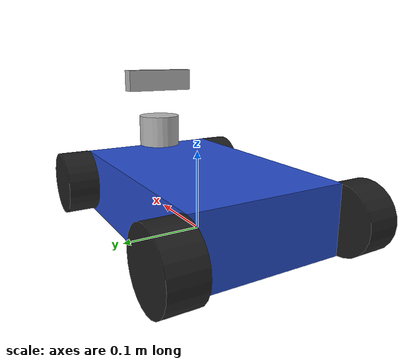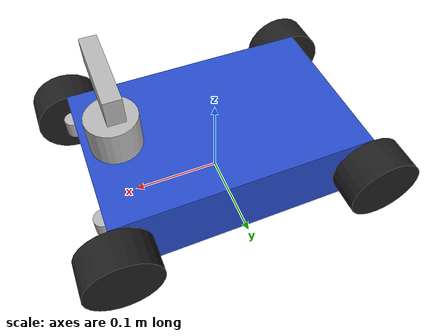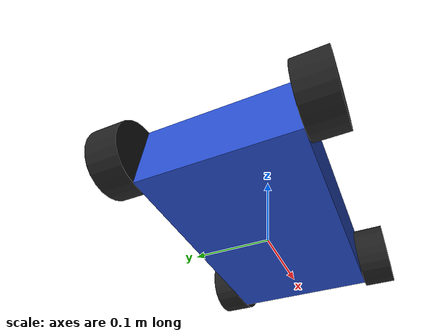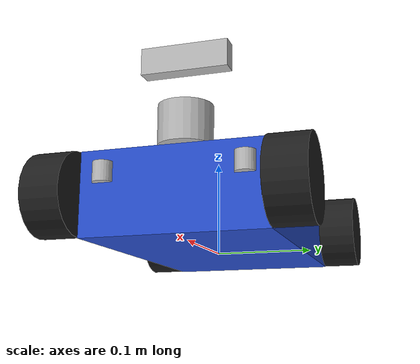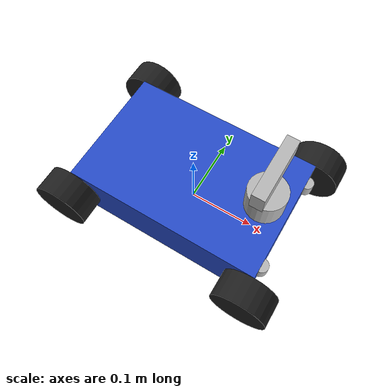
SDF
<sdf version='1.7'>
  <model name='arjuna_robot'>
    <link name='base_footprint'>
      <inertial>
        <pose>0.005202 0.000617 0.045561 0 -0 0</pose>
        <mass>5.27</mass>
        <inertia>
          <ixx>0.10289</ixx>
          <ixy>-0.000145593</ixy>
          <ixz>-0.00225699</ixz>
          <iyy>0.105411</iyy>
          <iyz>1.31973e-05</iyz>
          <izz>0.103347</izz>
        </inertia>
      </inertial>
      <collision name='base_footprint_fixed_joint_lump__base_link_collision'>
        <pose>0 0 0.0465 0 -0 0</pose>
        <geometry>
          <box>
            <size>0.29161 0.187 0.084</size>
          </box>
        </geometry>
        <surface>
          <contact>
            <ode/>
          </contact>
          <friction>
            <ode/>
          </friction>
        </surface>
      </collision>
      <collision name='base_footprint_fixed_joint_lump__camera_collision_1'>
        <pose>0.11 0 0.1815 0 -0 0</pose>
        <geometry>
          <box>
            <size>0.0175 0.091 0.028</size>
          </box>
        </geometry>
        <surface>
          <contact>
            <ode/>
          </contact>
          <friction>
            <ode/>
          </friction>
        </surface>
      </collision>
      <collision name='base_footprint_fixed_joint_lump__imu_collision_2'>
        <pose>0.05 0.065 0.0415 0 -0 0</pose>
        <geometry>
          <box>
            <size>0.027 0.02 0.004</size>
          </box>
        </geometry>
        <surface>
          <contact>
            <ode/>
          </contact>
          <friction>
            <ode/>
          </friction>
        </surface>
      </collision>
      <collision name='base_footprint_fixed_joint_lump__laser_collision_3'>
        <pose>0.11 0 0.1115 0 -0 3.14159</pose>
        <geometry>
          <box>
            <size>0.0556 0.0556 0.0413</size>
          </box>
        </geometry>
        <surface>
          <contact>
            <ode/>
          </contact>
          <friction>
            <ode/>
          </friction>
        </surface>
      </collision>
      <collision name='base_footprint_fixed_joint_lump__ultrasonic_left_collision_4'>
        <pose>0.1458 0.07 0.0615 0 -0 0</pose>
        <geometry>
          <cylinder>
            <length>0.02</length>
            <radius>0.01</radius>
          </cylinder>
        </geometry>
        <surface>
          <contact>
            <ode/>
          </contact>
          <friction>
            <ode/>
          </friction>
        </surface>
      </collision>
      <collision name='base_footprint_fixed_joint_lump__ultrasonic_right_collision_5'>
        <pose>0.1458 -0.07 0.0615 0 -0 0</pose>
        <geometry>
          <cylinder>
            <length>0.02</length>
            <radius>0.01</radius>
          </cylinder>
        </geometry>
        <surface>
          <contact>
            <ode/>
          </contact>
          <friction>
            <ode/>
          </friction>
        </surface>
      </collision>
      <visual name='base_footprint_fixed_joint_lump__base_link_visual'>
        <pose>0 0 0.0415 0 -0 0</pose>
        <geometry>
          <box>
            <size>0.29161 0.187 0.084</size>
          </box>
        </geometry>
        <material>
          <script>
            <name>Gazebo/Blue</name>
            <uri>file://media/materials/scripts/gazebo.material</uri>
          </script>
        </material>
      </visual>
      <visual name='base_footprint_fixed_joint_lump__camera_visual_1'>
        <pose>0.11 0 0.1815 0 -0 0</pose>
        <geometry>
          <box>
            <size>0.0175 0.091 0.028</size>
          </box>
        </geometry>
      </visual>
      <visual name='base_footprint_fixed_joint_lump__imu_visual_2'>
        <pose>0.05 0.065 0.0415 0 -0 0</pose>
        <geometry>
          <box>
            <size>0.027 0.02 0.004</size>
          </box>
        </geometry>
      </visual>
      <visual name='base_footprint_fixed_joint_lump__laser_visual_3'>
        <pose>0.11 0 0.1115 0 -0 3.14159</pose>
        <geometry>
          <cylinder>
            <length>0.0413</length>
            <radius>0.0278</radius>
          </cylinder>
        </geometry>
      </visual>
      <visual name='base_footprint_fixed_joint_lump__ultrasonic_left_visual_4'>
        <pose>0.1458 0.07 0.0615 0 -0 0</pose>
        <geometry>
          <cylinder>
            <length>0.02</length>
            <radius>0.01</radius>
          </cylinder>
        </geometry>
      </visual>
      <visual name='base_footprint_fixed_joint_lump__ultrasonic_right_visual_5'>
        <pose>0.1458 -0.07 0.0615 0 -0 0</pose>
        <geometry>
          <cylinder>
            <length>0.02</length>
            <radius>0.01</radius>
          </cylinder>
        </geometry>
      </visual>
      <sensor name='camera_sensor' type='camera'>
        <update_rate>30</update_rate>
        <camera name='head'>
          <horizontal_fov>1.39626</horizontal_fov>
          <image>
            <width>800</width>
            <height>800</height>
            <format>R8G8B8</format>
          </image>
          <clip>
            <near>0.02</near>
            <far>300</far>
          </clip>
          <noise>
            <type>gaussian</type>
            <mean>0</mean>
            <stddev>0.007</stddev>
          </noise>
        </camera>
        <plugin name='camera_controller' filename='libgazebo_ros_camera.so'>
          <ros>
            <namespace>arjuna</namespace>
            <remapping>image_raw:=camera/image_raw</remapping>
            <remapping>camera_info:=camera/camera_info</remapping>
          </ros>
          <camera_name>camera</camera_name>
          <frame_name>camera</frame_name>
          <hack_baseline>0.07</hack_baseline>
        </plugin>
        <pose>0.11 0 0.1815 0 -0 0</pose>
      </sensor>
      <gravity>1</gravity>
      <sensor name='imu_sensor' type='imu'>
        <always_on>1</always_on>
        <update_rate>100</update_rate>
        <visualize>1</visualize>
        <plugin name='imu_plugin' filename='libgazebo_ros_imu_sensor.so'>
          <ros>
            <namespace>/</namespace>
            <remapping>~/out:=imu/data</remapping>
          </ros>
          <frame_name>imu</frame_name>
          <initial_orientation_as_reference>0</initial_orientation_as_reference>
        </plugin>
        <pose>0.05 0.065 0.0415 0 -0 0</pose>
      </sensor>
      <sensor name='rplidar_c1' type='ray'>
        <visualize>0</visualize>
        <update_rate>10</update_rate>
        <ray>
          <scan>
            <horizontal>
              <samples>360</samples>
              <resolution>1</resolution>
              <min_angle>-3.14159</min_angle>
              <max_angle>3.14159</max_angle>
            </horizontal>
          </scan>
          <range>
            <min>0.05</min>
            <max>12</max>
            <resolution>0.01</resolution>
          </range>
          <noise>
            <type>gaussian</type>
            <mean>0</mean>
            <stddev>0.01</stddev>
          </noise>
        </ray>
        <plugin name='gazebo_ros_head_rplidar_controller' filename='libgazebo_ros_ray_sensor.so'>
          <ros>
            <remapping>~/out:=scan</remapping>
          </ros>
          <output_type>sensor_msgs/LaserScan</output_type>
          <frame_name>laser</frame_name>
        </plugin>
        <pose>0.11 0 0.1115 0 -0 3.14159</pose>
      </sensor>
      <sensor name='ultrasonic_sensor_left' type='ray'>
        <visualize>1</visualize>
        <update_rate>5</update_rate>
        <ray>
          <scan>
            <horizontal>
              <samples>5</samples>
              <resolution>1</resolution>
              <min_angle>-0.1</min_angle>
              <max_angle>0.1</max_angle>
            </horizontal>
            <vertical>
              <samples>5</samples>
              <resolution>1</resolution>
              <min_angle>-0.1</min_angle>
              <max_angle>0.1</max_angle>
            </vertical>
          </scan>
          <range>
            <min>0.02</min>
            <max>4</max>
            <resolution>0.01</resolution>
          </range>
        </ray>
        <plugin name='gazebo_ros_range_left' filename='libgazebo_ros_range.so'>
          <ros>
            <remapping>~/out:=/ultrasonic/left/range</remapping>
          </ros>
          <frame_name>ultrasonic_left</frame_name>
          <radiation_type>ultrasound</radiation_type>
          <fov>0.2</fov>
        </plugin>
        <pose>0.1458 0.07 0.0615 0 -0 0</pose>
      </sensor>
      <sensor name='ultrasonic_sensor_right' type='ray'>
        <visualize>1</visualize>
        <update_rate>5</update_rate>
        <ray>
          <scan>
            <horizontal>
              <samples>5</samples>
              <resolution>1</resolution>
              <min_angle>-0.1</min_angle>
              <max_angle>0.1</max_angle>
            </horizontal>
            <vertical>
              <samples>5</samples>
              <resolution>1</resolution>
              <min_angle>-0.1</min_angle>
              <max_angle>0.1</max_angle>
            </vertical>
          </scan>
          <range>
            <min>0.02</min>
            <max>4</max>
            <resolution>0.01</resolution>
          </range>
        </ray>
        <plugin name='gazebo_ros_range_right' filename='libgazebo_ros_range.so'>
          <ros>
            <remapping>~/out:=/ultrasonic/right/range</remapping>
          </ros>
          <frame_name>ultrasonic_right</frame_name>
          <radiation_type>ultrasound</radiation_type>
          <fov>0.2</fov>
        </plugin>
        <pose>0.1458 -0.07 0.0615 0 -0 0</pose>
      </sensor>
    </link>
    <joint name='front_wheel_left_joint' type='revolute'>
      <pose relative_to='base_footprint'>0.1458 0.1135 0.0415 -1.5707 0 0</pose>
      <parent>base_footprint</parent>
      <child>front_wheel_left</child>
      <axis>
        <xyz>0 0 1</xyz>
        <limit>
          <lower>-1e+16</lower>
          <upper>1e+16</upper>
        </limit>
        <dynamics>
          <spring_reference>0</spring_reference>
          <spring_stiffness>0</spring_stiffness>
        </dynamics>
      </axis>
    </joint>
    <link name='front_wheel_left'>
      <pose relative_to='front_wheel_left_joint'>0 0 0 0 -0 0</pose>
      <inertial>
        <pose>0 0 0 0 -0 0</pose>
        <mass>0.5</mass>
        <inertia>
          <ixx>0.001</ixx>
          <ixy>0</ixy>
          <ixz>0</ixz>
          <iyy>0.001</iyy>
          <iyz>0</iyz>
          <izz>0.001</izz>
        </inertia>
      </inertial>
      <collision name='front_wheel_left_collision'>
        <pose>0 0 0 0 -0 0</pose>
        <geometry>
          <cylinder>
            <length>0.04</length>
            <radius>0.0415</radius>
          </cylinder>
        </geometry>
        <surface>
          <contact>
            <ode>
              <kp>1e+06</kp>
              <kd>100</kd>
              <max_vel>0.1</max_vel>
              <min_depth>0.001</min_depth>
            </ode>
          </contact>
          <friction>
            <ode>
              <mu>1</mu>
              <mu2>1</mu2>
              <fdir1>1 0 0</fdir1>
            </ode>
          </friction>
        </surface>
      </collision>
      <visual name='front_wheel_left_visual'>
        <pose>0 0 0 0 -0 0</pose>
        <geometry>
          <cylinder>
            <length>0.04</length>
            <radius>0.0415</radius>
          </cylinder>
        </geometry>
        <material>
          <script>
            <name>Gazebo/FlatBlack</name>
            <uri>file://media/materials/scripts/gazebo.material</uri>
          </script>
        </material>
      </visual>
    </link>
    <joint name='front_wheel_right_joint' type='revolute'>
      <pose relative_to='base_footprint'>0.1458 -0.1135 0.0415 1.5707 -0 0</pose>
      <parent>base_footprint</parent>
      <child>front_wheel_right</child>
      <axis>
        <xyz>0 0 -1</xyz>
        <limit>
          <lower>-1e+16</lower>
          <upper>1e+16</upper>
        </limit>
        <dynamics>
          <spring_reference>0</spring_reference>
          <spring_stiffness>0</spring_stiffness>
        </dynamics>
      </axis>
    </joint>
    <link name='front_wheel_right'>
      <pose relative_to='front_wheel_right_joint'>0 0 0 0 -0 0</pose>
      <inertial>
        <pose>0 0 0 0 -0 0</pose>
        <mass>0.5</mass>
        <inertia>
          <ixx>0.001</ixx>
          <ixy>0</ixy>
          <ixz>0</ixz>
          <iyy>0.001</iyy>
          <iyz>0</iyz>
          <izz>0.001</izz>
        </inertia>
      </inertial>
      <collision name='front_wheel_right_collision'>
        <pose>0 0 0 0 -0 0</pose>
        <geometry>
          <cylinder>
            <length>0.04</length>
            <radius>0.0415</radius>
          </cylinder>
        </geometry>
        <surface>
          <contact>
            <ode>
              <kp>1e+06</kp>
              <kd>100</kd>
              <max_vel>0.1</max_vel>
              <min_depth>0.001</min_depth>
            </ode>
          </contact>
          <friction>
            <ode>
              <mu>1</mu>
              <mu2>1</mu2>
              <fdir1>1 0 0</fdir1>
            </ode>
          </friction>
        </surface>
      </collision>
      <visual name='front_wheel_right_visual'>
        <pose>0 0 0 0 -0 0</pose>
        <geometry>
          <cylinder>
            <length>0.04</length>
            <radius>0.0415</radius>
          </cylinder>
        </geometry>
        <material>
          <script>
            <name>Gazebo/FlatBlack</name>
            <uri>file://media/materials/scripts/gazebo.material</uri>
          </script>
        </material>
      </visual>
    </link>
    <joint name='rear_wheel_left_joint' type='revolute'>
      <pose relative_to='base_footprint'>-0.1458 0.1135 0.0415 -1.5707 0 0</pose>
      <parent>base_footprint</parent>
      <child>rear_wheel_left</child>
      <axis>
        <xyz>0 0 1</xyz>
        <limit>
          <lower>-1e+16</lower>
          <upper>1e+16</upper>
        </limit>
        <dynamics>
          <spring_reference>0</spring_reference>
          <spring_stiffness>0</spring_stiffness>
        </dynamics>
      </axis>
    </joint>
    <link name='rear_wheel_left'>
      <pose relative_to='rear_wheel_left_joint'>0 0 0 0 -0 0</pose>
      <inertial>
        <pose>0 0 0 0 -0 0</pose>
        <mass>0.5</mass>
        <inertia>
          <ixx>0.001</ixx>
          <ixy>0</ixy>
          <ixz>0</ixz>
          <iyy>0.001</iyy>
          <iyz>0</iyz>
          <izz>0.001</izz>
        </inertia>
      </inertial>
      <collision name='rear_wheel_left_collision'>
        <pose>0 0 0 0 -0 0</pose>
        <geometry>
          <cylinder>
            <length>0.04</length>
            <radius>0.0415</radius>
          </cylinder>
        </geometry>
        <surface>
          <contact>
            <ode>
              <kp>1e+06</kp>
              <kd>100</kd>
              <max_vel>0.1</max_vel>
              <min_depth>0.001</min_depth>
            </ode>
          </contact>
          <friction>
            <ode>
              <mu>1</mu>
              <mu2>1</mu2>
              <fdir1>1 0 0</fdir1>
            </ode>
          </friction>
        </surface>
      </collision>
      <visual name='rear_wheel_left_visual'>
        <pose>0 0 0 0 -0 0</pose>
        <geometry>
          <cylinder>
            <length>0.04</length>
            <radius>0.0415</radius>
          </cylinder>
        </geometry>
        <material>
          <script>
            <name>Gazebo/FlatBlack</name>
            <uri>file://media/materials/scripts/gazebo.material</uri>
          </script>
        </material>
      </visual>
    </link>
    <joint name='rear_wheel_right_joint' type='revolute'>
      <pose relative_to='base_footprint'>-0.1458 -0.1135 0.0415 1.5707 -0 0</pose>
      <parent>base_footprint</parent>
      <child>rear_wheel_right</child>
      <axis>
        <xyz>0 0 -1</xyz>
        <limit>
          <lower>-1e+16</lower>
          <upper>1e+16</upper>
        </limit>
        <dynamics>
          <spring_reference>0</spring_reference>
          <spring_stiffness>0</spring_stiffness>
        </dynamics>
      </axis>
    </joint>
    <link name='rear_wheel_right'>
      <pose relative_to='rear_wheel_right_joint'>0 0 0 0 -0 0</pose>
      <inertial>
        <pose>0 0 0 0 -0 0</pose>
        <mass>0.5</mass>
        <inertia>
          <ixx>0.001</ixx>
          <ixy>0</ixy>
          <ixz>0</ixz>
          <iyy>0.001</iyy>
          <iyz>0</iyz>
          <izz>0.001</izz>
        </inertia>
      </inertial>
      <collision name='rear_wheel_right_collision'>
        <pose>0 0 0 0 -0 0</pose>
        <geometry>
          <cylinder>
            <length>0.04</length>
            <radius>0.0415</radius>
          </cylinder>
        </geometry>
        <surface>
          <contact>
            <ode>
              <kp>1e+06</kp>
              <kd>100</kd>
              <max_vel>0.1</max_vel>
              <min_depth>0.001</min_depth>
            </ode>
          </contact>
          <friction>
            <ode>
              <mu>1</mu>
              <mu2>1</mu2>
              <fdir1>1 0 0</fdir1>
            </ode>
          </friction>
        </surface>
      </collision>
      <visual name='rear_wheel_right_visual'>
        <pose>0 0 0 0 -0 0</pose>
        <geometry>
          <cylinder>
            <length>0.04</length>
            <radius>0.0415</radius>
          </cylinder>
        </geometry>
        <material>
          <script>
            <name>Gazebo/FlatBlack</name>
            <uri>file://media/materials/scripts/gazebo.material</uri>
          </script>
        </material>
      </visual>
    </link>
    <static>0</static>
    <plugin name='diff_drive' filename='libgazebo_ros_diff_drive.so'>
      <num_wheel_pairs>2</num_wheel_pairs>
      <left_joint>front_wheel_left_joint</left_joint>
      <left_joint>rear_wheel_left_joint</left_joint>
      <right_joint>front_wheel_right_joint</right_joint>
      <right_joint>rear_wheel_right_joint</right_joint>
      <wheel_separation>0.227</wheel_separation>
      <wheel_diameter>0.083</wheel_diameter>
      <max_wheel_torque>20</max_wheel_torque>
      <max_wheel_acceleration>1.0</max_wheel_acceleration>
      <publish_odom>1</publish_odom>
      <publish_odom_tf>1</publish_odom_tf>
      <publish_wheel_tf>0</publish_wheel_tf>
      <publish_wheel_joint_state>1</publish_wheel_joint_state>
      <publishWheelTF>0</publishWheelTF>
      <publishWheelJointState>1</publishWheelJointState>
      <odometry_frame>odom</odometry_frame>
      <robot_base_frame>base_footprint</robot_base_frame>
    </plugin>
    <plugin name='joint_state_publisher' filename='libgazebo_ros_joint_state_publisher.so'>
      <update_rate>30</update_rate>
      <joint_name>front_wheel_left_joint</joint_name>
      <joint_name>front_wheel_right_joint</joint_name>
      <joint_name>rear_wheel_left_joint</joint_name>
      <joint_name>rear_wheel_right_joint</joint_name>
    </plugin>
  </model>
</sdf>
